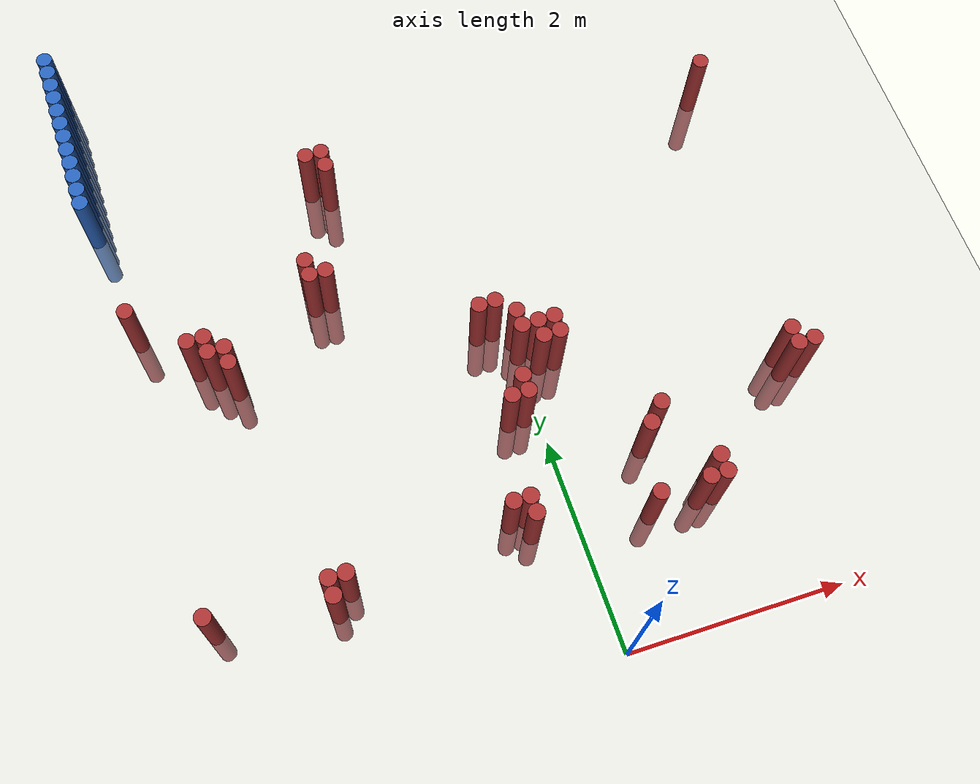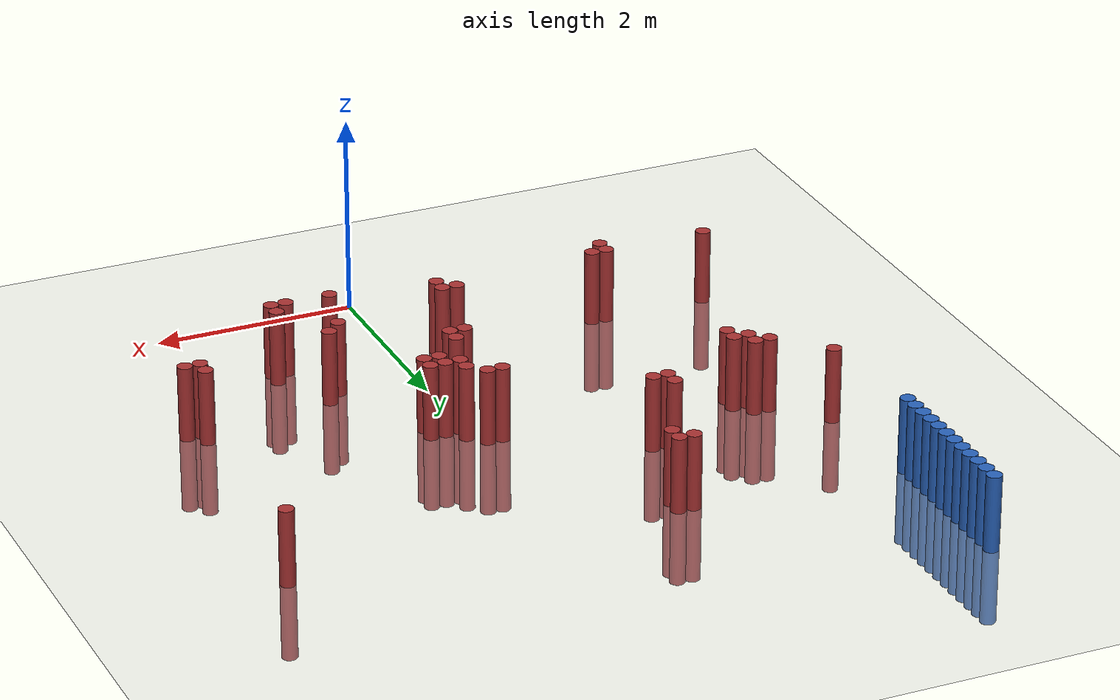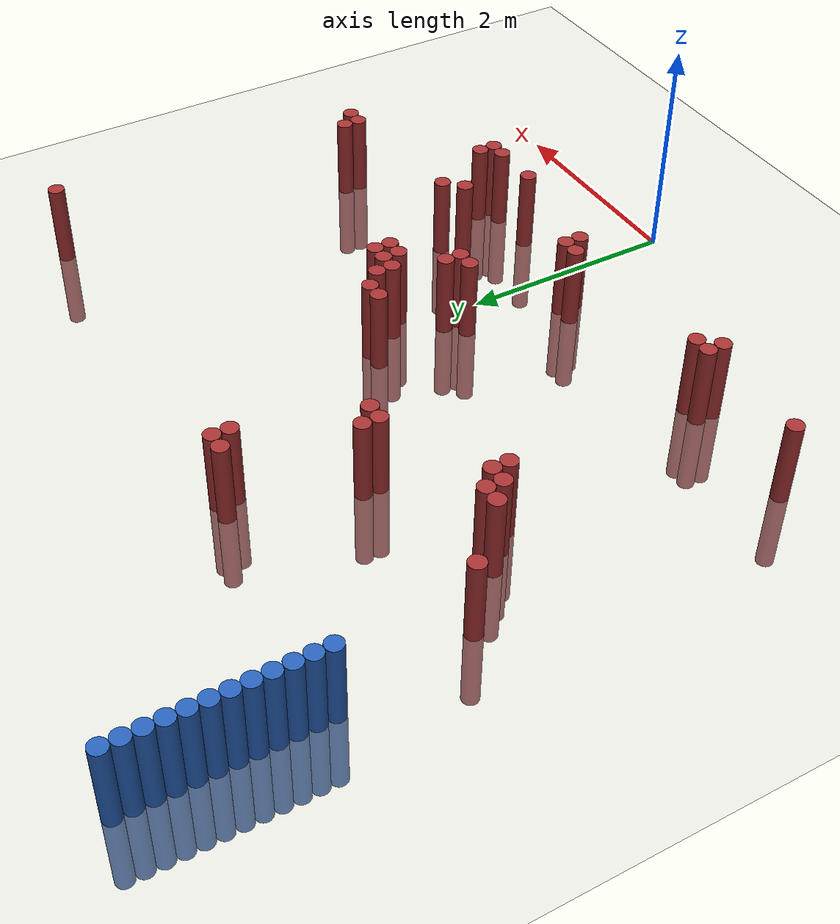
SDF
<sdf version="1.6">
 <world name="default">
  <model name="ground_plane">
   <static>1</static>
   <link name="link">
    <collision name="collision">
     <geometry><plane><normal>0 0 1</normal><size>100 100</size></plane></geometry>
     <surface><friction><ode><mu>100</mu><mu2>50</mu2></ode></friction></surface>
    </collision>
    <visual name="visual">
     <cast_shadows>0</cast_shadows>
     <geometry><plane><normal>0 0 1</normal><size>100 100</size></plane></geometry>
     <material>
      <script><uri>file://media/materials/scripts/gazebo.material</uri><name>Gazebo/Grey</name></script>
     </material>
    </visual>
   </link>
  </model>
  <model name="unit_cylinder_185">
   <static>1</static>
   <pose>-3.425000 5.275000 0.000000 0.000000 0.000000 0.000000</pose>
   <link name="link">
    <inertial>
     <mass>1</mass>
     <inertia><ixx>0.145833</ixx><ixy>0</ixy><ixz>0</ixz><iyy>0.145833</iyy><iyz>0</iyz><izz>0.125</izz></inertia>
    </inertial>
    <collision name="collision">
     <geometry><cylinder><radius>0.075000</radius><length>1.5</length></cylinder></geometry>
    </collision>
    <visual name="visual">
     <geometry><cylinder><radius>0.075000</radius><length>1.5</length></cylinder></geometry>
     <material>
      <ambient>0.152000 0.379000 0.720000 1</ambient>
      <diffuse>0.152000 0.379000 0.720000 1</diffuse>
     </material>
     <material>
      <script><name>Gazebo/Grey</name><uri>file://media/materials/scripts/gazebo.material</uri></script>
     </material>
    </visual>
   </link>
  </model>
  <model name="unit_cylinder_187">
   <static>1</static>
   <pose>-3.425000 5.425000 0.000000 0.000000 0.000000 0.000000</pose>
   <link name="link">
    <inertial>
     <mass>1</mass>
     <inertia><ixx>0.145833</ixx><ixy>0</ixy><ixz>0</ixz><iyy>0.145833</iyy><iyz>0</iyz><izz>0.125</izz></inertia>
    </inertial>
    <collision name="collision">
     <geometry><cylinder><radius>0.075000</radius><length>1.5</length></cylinder></geometry>
    </collision>
    <visual name="visual">
     <geometry><cylinder><radius>0.075000</radius><length>1.5</length></cylinder></geometry>
     <material>
      <ambient>0.152000 0.379000 0.720000 1</ambient>
      <diffuse>0.152000 0.379000 0.720000 1</diffuse>
     </material>
     <material>
      <script><name>Gazebo/Grey</name><uri>file://media/materials/scripts/gazebo.material</uri></script>
     </material>
    </visual>
   </link>
  </model>
  <model name="unit_cylinder_189">
   <static>1</static>
   <pose>-3.425000 5.575000 0.000000 0.000000 0.000000 0.000000</pose>
   <link name="link">
    <inertial>
     <mass>1</mass>
     <inertia><ixx>0.145833</ixx><ixy>0</ixy><ixz>0</ixz><iyy>0.145833</iyy><iyz>0</iyz><izz>0.125</izz></inertia>
    </inertial>
    <collision name="collision">
     <geometry><cylinder><radius>0.075000</radius><length>1.5</length></cylinder></geometry>
    </collision>
    <visual name="visual">
     <geometry><cylinder><radius>0.075000</radius><length>1.5</length></cylinder></geometry>
     <material>
      <ambient>0.152000 0.379000 0.720000 1</ambient>
      <diffuse>0.152000 0.379000 0.720000 1</diffuse>
     </material>
     <material>
      <script><name>Gazebo/Grey</name><uri>file://media/materials/scripts/gazebo.material</uri></script>
     </material>
    </visual>
   </link>
  </model>
  <model name="unit_cylinder_191">
   <static>1</static>
   <pose>-3.425000 5.725000 0.000000 0.000000 0.000000 0.000000</pose>
   <link name="link">
    <inertial>
     <mass>1</mass>
     <inertia><ixx>0.145833</ixx><ixy>0</ixy><ixz>0</ixz><iyy>0.145833</iyy><iyz>0</iyz><izz>0.125</izz></inertia>
    </inertial>
    <collision name="collision">
     <geometry><cylinder><radius>0.075000</radius><length>1.5</length></cylinder></geometry>
    </collision>
    <visual name="visual">
     <geometry><cylinder><radius>0.075000</radius><length>1.5</length></cylinder></geometry>
     <material>
      <ambient>0.152000 0.379000 0.720000 1</ambient>
      <diffuse>0.152000 0.379000 0.720000 1</diffuse>
     </material>
     <material>
      <script><name>Gazebo/Grey</name><uri>file://media/materials/scripts/gazebo.material</uri></script>
     </material>
    </visual>
   </link>
  </model>
  <model name="unit_cylinder_193">
   <static>1</static>
   <pose>-3.425000 5.875000 0.000000 0.000000 0.000000 0.000000</pose>
   <link name="link">
    <inertial>
     <mass>1</mass>
     <inertia><ixx>0.145833</ixx><ixy>0</ixy><ixz>0</ixz><iyy>0.145833</iyy><iyz>0</iyz><izz>0.125</izz></inertia>
    </inertial>
    <collision name="collision">
     <geometry><cylinder><radius>0.075000</radius><length>1.5</length></cylinder></geometry>
    </collision>
    <visual name="visual">
     <geometry><cylinder><radius>0.075000</radius><length>1.5</length></cylinder></geometry>
     <material>
      <ambient>0.152000 0.379000 0.720000 1</ambient>
      <diffuse>0.152000 0.379000 0.720000 1</diffuse>
     </material>
     <material>
      <script><name>Gazebo/Grey</name><uri>file://media/materials/scripts/gazebo.material</uri></script>
     </material>
    </visual>
   </link>
  </model>
  <model name="unit_cylinder_195">
   <static>1</static>
   <pose>-3.425000 6.025000 0.000000 0.000000 0.000000 0.000000</pose>
   <link name="link">
    <inertial>
     <mass>1</mass>
     <inertia><ixx>0.145833</ixx><ixy>0</ixy><ixz>0</ixz><iyy>0.145833</iyy><iyz>0</iyz><izz>0.125</izz></inertia>
    </inertial>
    <collision name="collision">
     <geometry><cylinder><radius>0.075000</radius><length>1.5</length></cylinder></geometry>
    </collision>
    <visual name="visual">
     <geometry><cylinder><radius>0.075000</radius><length>1.5</length></cylinder></geometry>
     <material>
      <ambient>0.152000 0.379000 0.720000 1</ambient>
      <diffuse>0.152000 0.379000 0.720000 1</diffuse>
     </material>
     <material>
      <script><name>Gazebo/Grey</name><uri>file://media/materials/scripts/gazebo.material</uri></script>
     </material>
    </visual>
   </link>
  </model>
  <model name="unit_cylinder_197">
   <static>1</static>
   <pose>-3.425000 6.175000 0.000000 0.000000 0.000000 0.000000</pose>
   <link name="link">
    <inertial>
     <mass>1</mass>
     <inertia><ixx>0.145833</ixx><ixy>0</ixy><ixz>0</ixz><iyy>0.145833</iyy><iyz>0</iyz><izz>0.125</izz></inertia>
    </inertial>
    <collision name="collision">
     <geometry><cylinder><radius>0.075000</radius><length>1.5</length></cylinder></geometry>
    </collision>
    <visual name="visual">
     <geometry><cylinder><radius>0.075000</radius><length>1.5</length></cylinder></geometry>
     <material>
      <ambient>0.152000 0.379000 0.720000 1</ambient>
      <diffuse>0.152000 0.379000 0.720000 1</diffuse>
     </material>
     <material>
      <script><name>Gazebo/Grey</name><uri>file://media/materials/scripts/gazebo.material</uri></script>
     </material>
    </visual>
   </link>
  </model>
  <model name="unit_cylinder_199">
   <static>1</static>
   <pose>-3.425000 6.325000 0.000000 0.000000 0.000000 0.000000</pose>
   <link name="link">
    <inertial>
     <mass>1</mass>
     <inertia><ixx>0.145833</ixx><ixy>0</ixy><ixz>0</ixz><iyy>0.145833</iyy><iyz>0</iyz><izz>0.125</izz></inertia>
    </inertial>
    <collision name="collision">
     <geometry><cylinder><radius>0.075000</radius><length>1.5</length></cylinder></geometry>
    </collision>
    <visual name="visual">
     <geometry><cylinder><radius>0.075000</radius><length>1.5</length></cylinder></geometry>
     <material>
      <ambient>0.152000 0.379000 0.720000 1</ambient>
      <diffuse>0.152000 0.379000 0.720000 1</diffuse>
     </material>
     <material>
      <script><name>Gazebo/Grey</name><uri>file://media/materials/scripts/gazebo.material</uri></script>
     </material>
    </visual>
   </link>
  </model>
  <model name="unit_cylinder_201">
   <static>1</static>
   <pose>-3.425000 6.475000 0.000000 0.000000 0.000000 0.000000</pose>
   <link name="link">
    <inertial>
     <mass>1</mass>
     <inertia><ixx>0.145833</ixx><ixy>0</ixy><ixz>0</ixz><iyy>0.145833</iyy><iyz>0</iyz><izz>0.125</izz></inertia>
    </inertial>
    <collision name="collision">
     <geometry><cylinder><radius>0.075000</radius><length>1.5</length></cylinder></geometry>
    </collision>
    <visual name="visual">
     <geometry><cylinder><radius>0.075000</radius><length>1.5</length></cylinder></geometry>
     <material>
      <ambient>0.152000 0.379000 0.720000 1</ambient>
      <diffuse>0.152000 0.379000 0.720000 1</diffuse>
     </material>
     <material>
      <script><name>Gazebo/Grey</name><uri>file://media/materials/scripts/gazebo.material</uri></script>
     </material>
    </visual>
   </link>
  </model>
  <model name="unit_cylinder_203">
   <static>1</static>
   <pose>-3.425000 6.625000 0.000000 0.000000 0.000000 0.000000</pose>
   <link name="link">
    <inertial>
     <mass>1</mass>
     <inertia><ixx>0.145833</ixx><ixy>0</ixy><ixz>0</ixz><iyy>0.145833</iyy><iyz>0</iyz><izz>0.125</izz></inertia>
    </inertial>
    <collision name="collision">
     <geometry><cylinder><radius>0.075000</radius><length>1.5</length></cylinder></geometry>
    </collision>
    <visual name="visual">
     <geometry><cylinder><radius>0.075000</radius><length>1.5</length></cylinder></geometry>
     <material>
      <ambient>0.152000 0.379000 0.720000 1</ambient>
      <diffuse>0.152000 0.379000 0.720000 1</diffuse>
     </material>
     <material>
      <script><name>Gazebo/Grey</name><uri>file://media/materials/scripts/gazebo.material</uri></script>
     </material>
    </visual>
   </link>
  </model>
  <model name="unit_cylinder_205">
   <static>1</static>
   <pose>-3.425000 6.775000 0.000000 0.000000 0.000000 0.000000</pose>
   <link name="link">
    <inertial>
     <mass>1</mass>
     <inertia><ixx>0.145833</ixx><ixy>0</ixy><ixz>0</ixz><iyy>0.145833</iyy><iyz>0</iyz><izz>0.125</izz></inertia>
    </inertial>
    <collision name="collision">
     <geometry><cylinder><radius>0.075000</radius><length>1.5</length></cylinder></geometry>
    </collision>
    <visual name="visual">
     <geometry><cylinder><radius>0.075000</radius><length>1.5</length></cylinder></geometry>
     <material>
      <ambient>0.152000 0.379000 0.720000 1</ambient>
      <diffuse>0.152000 0.379000 0.720000 1</diffuse>
     </material>
     <material>
      <script><name>Gazebo/Grey</name><uri>file://media/materials/scripts/gazebo.material</uri></script>
     </material>
    </visual>
   </link>
  </model>
  <model name="unit_cylinder_207">
   <static>1</static>
   <pose>-3.425000 6.925000 0.000000 0.000000 0.000000 0.000000</pose>
   <link name="link">
    <inertial>
     <mass>1</mass>
     <inertia><ixx>0.145833</ixx><ixy>0</ixy><ixz>0</ixz><iyy>0.145833</iyy><iyz>0</iyz><izz>0.125</izz></inertia>
    </inertial>
    <collision name="collision">
     <geometry><cylinder><radius>0.075000</radius><length>1.5</length></cylinder></geometry>
    </collision>
    <visual name="visual">
     <geometry><cylinder><radius>0.075000</radius><length>1.5</length></cylinder></geometry>
     <material>
      <ambient>0.152000 0.379000 0.720000 1</ambient>
      <diffuse>0.152000 0.379000 0.720000 1</diffuse>
     </material>
     <material>
      <script><name>Gazebo/Grey</name><uri>file://media/materials/scripts/gazebo.material</uri></script>
     </material>
    </visual>
   </link>
  </model>
  <model name="unit_cylinder_256">
   <static>1</static>
   <pose>-3.425000 5.275000 0.000000 0.000000 0.000000 0.000000</pose>
   <link name="link">
    <inertial>
     <mass>1</mass>
     <inertia><ixx>0.145833</ixx><ixy>0</ixy><ixz>0</ixz><iyy>0.145833</iyy><iyz>0</iyz><izz>0.125</izz></inertia>
    </inertial>
    <collision name="collision">
     <geometry><cylinder><radius>0.075000</radius><length>1.5</length></cylinder></geometry>
    </collision>
    <visual name="visual">
     <geometry><cylinder><radius>0.075000</radius><length>1.5</length></cylinder></geometry>
     <material>
      <ambient>0.152000 0.379000 0.720000 1</ambient>
      <diffuse>0.152000 0.379000 0.720000 1</diffuse>
     </material>
     <material>
      <script><name>Gazebo/Grey</name><uri>file://media/materials/scripts/gazebo.material</uri></script>
     </material>
    </visual>
   </link>
  </model>
  <model name="unit_cylinder_257">
   <static>1</static>
   <pose>-3.425000 5.425000 0.000000 0.000000 0.000000 0.000000</pose>
   <link name="link">
    <inertial>
     <mass>1</mass>
     <inertia><ixx>0.145833</ixx><ixy>0</ixy><ixz>0</ixz><iyy>0.145833</iyy><iyz>0</iyz><izz>0.125</izz></inertia>
    </inertial>
    <collision name="collision">
     <geometry><cylinder><radius>0.075000</radius><length>1.5</length></cylinder></geometry>
    </collision>
    <visual name="visual">
     <geometry><cylinder><radius>0.075000</radius><length>1.5</length></cylinder></geometry>
     <material>
      <ambient>0.152000 0.379000 0.720000 1</ambient>
      <diffuse>0.152000 0.379000 0.720000 1</diffuse>
     </material>
     <material>
      <script><name>Gazebo/Grey</name><uri>file://media/materials/scripts/gazebo.material</uri></script>
     </material>
    </visual>
   </link>
  </model>
  <model name="unit_cylinder_261">
   <static>1</static>
   <pose>-3.275000 1.225000 0.000000 0.000000 0.000000 0.000000</pose>
   <link name="link">
    <inertial>
     <mass>1</mass>
     <inertia><ixx>0.145833</ixx><ixy>0</ixy><ixz>0</ixz><iyy>0.145833</iyy><iyz>0</iyz><izz>0.125</izz></inertia>
    </inertial>
    <collision name="collision">
     <geometry><cylinder><radius>0.075000</radius><length>1.5</length></cylinder></geometry>
    </collision>
    <visual name="visual">
     <geometry><cylinder><radius>0.075000</radius><length>1.5</length></cylinder></geometry>
     <material>
      <ambient>0.648000 0.192000 0.192000 1</ambient>
      <diffuse>0.648000 0.192000 0.192000 1</diffuse>
     </material>
     <material>
      <script><name>Gazebo/Grey</name><uri>file://media/materials/scripts/gazebo.material</uri></script>
     </material>
    </visual>
   </link>
  </model>
  <model name="unit_cylinder_262">
   <static>1</static>
   <pose>-3.275000 4.075000 0.000000 0.000000 0.000000 0.000000</pose>
   <link name="link">
    <inertial>
     <mass>1</mass>
     <inertia><ixx>0.145833</ixx><ixy>0</ixy><ixz>0</ixz><iyy>0.145833</iyy><iyz>0</iyz><izz>0.125</izz></inertia>
    </inertial>
    <collision name="collision">
     <geometry><cylinder><radius>0.075000</radius><length>1.5</length></cylinder></geometry>
    </collision>
    <visual name="visual">
     <geometry><cylinder><radius>0.075000</radius><length>1.5</length></cylinder></geometry>
     <material>
      <ambient>0.648000 0.192000 0.192000 1</ambient>
      <diffuse>0.648000 0.192000 0.192000 1</diffuse>
     </material>
     <material>
      <script><name>Gazebo/Grey</name><uri>file://media/materials/scripts/gazebo.material</uri></script>
     </material>
    </visual>
   </link>
  </model>
  <model name="unit_cylinder_263">
   <static>1</static>
   <pose>-2.825000 3.625000 0.000000 0.000000 0.000000 0.000000</pose>
   <link name="link">
    <inertial>
     <mass>1</mass>
     <inertia><ixx>0.145833</ixx><ixy>0</ixy><ixz>0</ixz><iyy>0.145833</iyy><iyz>0</iyz><izz>0.125</izz></inertia>
    </inertial>
    <collision name="collision">
     <geometry><cylinder><radius>0.075000</radius><length>1.5</length></cylinder></geometry>
    </collision>
    <visual name="visual">
     <geometry><cylinder><radius>0.075000</radius><length>1.5</length></cylinder></geometry>
     <material>
      <ambient>0.648000 0.192000 0.192000 1</ambient>
      <diffuse>0.648000 0.192000 0.192000 1</diffuse>
     </material>
     <material>
      <script><name>Gazebo/Grey</name><uri>file://media/materials/scripts/gazebo.material</uri></script>
     </material>
    </visual>
   </link>
  </model>
  <model name="unit_cylinder_264">
   <static>1</static>
   <pose>-2.675000 3.475000 0.000000 0.000000 0.000000 0.000000</pose>
   <link name="link">
    <inertial>
     <mass>1</mass>
     <inertia><ixx>0.145833</ixx><ixy>0</ixy><ixz>0</ixz><iyy>0.145833</iyy><iyz>0</iyz><izz>0.125</izz></inertia>
    </inertial>
    <collision name="collision">
     <geometry><cylinder><radius>0.075000</radius><length>1.5</length></cylinder></geometry>
    </collision>
    <visual name="visual">
     <geometry><cylinder><radius>0.075000</radius><length>1.5</length></cylinder></geometry>
     <material>
      <ambient>0.648000 0.192000 0.192000 1</ambient>
      <diffuse>0.648000 0.192000 0.192000 1</diffuse>
     </material>
     <material>
      <script><name>Gazebo/Grey</name><uri>file://media/materials/scripts/gazebo.material</uri></script>
     </material>
    </visual>
   </link>
  </model>
  <model name="unit_cylinder_265">
   <static>1</static>
   <pose>-2.675000 3.625000 0.000000 0.000000 0.000000 0.000000</pose>
   <link name="link">
    <inertial>
     <mass>1</mass>
     <inertia><ixx>0.145833</ixx><ixy>0</ixy><ixz>0</ixz><iyy>0.145833</iyy><iyz>0</iyz><izz>0.125</izz></inertia>
    </inertial>
    <collision name="collision">
     <geometry><cylinder><radius>0.075000</radius><length>1.5</length></cylinder></geometry>
    </collision>
    <visual name="visual">
     <geometry><cylinder><radius>0.075000</radius><length>1.5</length></cylinder></geometry>
     <material>
      <ambient>0.648000 0.192000 0.192000 1</ambient>
      <diffuse>0.648000 0.192000 0.192000 1</diffuse>
     </material>
     <material>
      <script><name>Gazebo/Grey</name><uri>file://media/materials/scripts/gazebo.material</uri></script>
     </material>
    </visual>
   </link>
  </model>
  <model name="unit_cylinder_266">
   <static>1</static>
   <pose>-2.525000 3.325000 0.000000 0.000000 0.000000 0.000000</pose>
   <link name="link">
    <inertial>
     <mass>1</mass>
     <inertia><ixx>0.145833</ixx><ixy>0</ixy><ixz>0</ixz><iyy>0.145833</iyy><iyz>0</iyz><izz>0.125</izz></inertia>
    </inertial>
    <collision name="collision">
     <geometry><cylinder><radius>0.075000</radius><length>1.5</length></cylinder></geometry>
    </collision>
    <visual name="visual">
     <geometry><cylinder><radius>0.075000</radius><length>1.5</length></cylinder></geometry>
     <material>
      <ambient>0.648000 0.192000 0.192000 1</ambient>
      <diffuse>0.648000 0.192000 0.192000 1</diffuse>
     </material>
     <material>
      <script><name>Gazebo/Grey</name><uri>file://media/materials/scripts/gazebo.material</uri></script>
     </material>
    </visual>
   </link>
  </model>
  <model name="unit_cylinder_267">
   <static>1</static>
   <pose>-2.525000 3.475000 0.000000 0.000000 0.000000 0.000000</pose>
   <link name="link">
    <inertial>
     <mass>1</mass>
     <inertia><ixx>0.145833</ixx><ixy>0</ixy><ixz>0</ixz><iyy>0.145833</iyy><iyz>0</iyz><izz>0.125</izz></inertia>
    </inertial>
    <collision name="collision">
     <geometry><cylinder><radius>0.075000</radius><length>1.5</length></cylinder></geometry>
    </collision>
    <visual name="visual">
     <geometry><cylinder><radius>0.075000</radius><length>1.5</length></cylinder></geometry>
     <material>
      <ambient>0.648000 0.192000 0.192000 1</ambient>
      <diffuse>0.648000 0.192000 0.192000 1</diffuse>
     </material>
     <material>
      <script><name>Gazebo/Grey</name><uri>file://media/materials/scripts/gazebo.material</uri></script>
     </material>
    </visual>
   </link>
  </model>
  <model name="unit_cylinder_271">
   <static>1</static>
   <pose>-2.225000 1.075000 0.000000 0.000000 0.000000 0.000000</pose>
   <link name="link">
    <inertial>
     <mass>1</mass>
     <inertia><ixx>0.145833</ixx><ixy>0</ixy><ixz>0</ixz><iyy>0.145833</iyy><iyz>0</iyz><izz>0.125</izz></inertia>
    </inertial>
    <collision name="collision">
     <geometry><cylinder><radius>0.075000</radius><length>1.5</length></cylinder></geometry>
    </collision>
    <visual name="visual">
     <geometry><cylinder><radius>0.075000</radius><length>1.5</length></cylinder></geometry>
     <material>
      <ambient>0.648000 0.192000 0.192000 1</ambient>
      <diffuse>0.648000 0.192000 0.192000 1</diffuse>
     </material>
     <material>
      <script><name>Gazebo/Grey</name><uri>file://media/materials/scripts/gazebo.material</uri></script>
     </material>
    </visual>
   </link>
  </model>
  <model name="unit_cylinder_272">
   <static>1</static>
   <pose>-2.225000 1.225000 0.000000 0.000000 0.000000 0.000000</pose>
   <link name="link">
    <inertial>
     <mass>1</mass>
     <inertia><ixx>0.145833</ixx><ixy>0</ixy><ixz>0</ixz><iyy>0.145833</iyy><iyz>0</iyz><izz>0.125</izz></inertia>
    </inertial>
    <collision name="collision">
     <geometry><cylinder><radius>0.075000</radius><length>1.5</length></cylinder></geometry>
    </collision>
    <visual name="visual">
     <geometry><cylinder><radius>0.075000</radius><length>1.5</length></cylinder></geometry>
     <material>
      <ambient>0.648000 0.192000 0.192000 1</ambient>
      <diffuse>0.648000 0.192000 0.192000 1</diffuse>
     </material>
     <material>
      <script><name>Gazebo/Grey</name><uri>file://media/materials/scripts/gazebo.material</uri></script>
     </material>
    </visual>
   </link>
  </model>
  <model name="unit_cylinder_274">
   <static>1</static>
   <pose>-2.075000 1.225000 0.000000 0.000000 0.000000 0.000000</pose>
   <link name="link">
    <inertial>
     <mass>1</mass>
     <inertia><ixx>0.145833</ixx><ixy>0</ixy><ixz>0</ixz><iyy>0.145833</iyy><iyz>0</iyz><izz>0.125</izz></inertia>
    </inertial>
    <collision name="collision">
     <geometry><cylinder><radius>0.075000</radius><length>1.5</length></cylinder></geometry>
    </collision>
    <visual name="visual">
     <geometry><cylinder><radius>0.075000</radius><length>1.5</length></cylinder></geometry>
     <material>
      <ambient>0.648000 0.192000 0.192000 1</ambient>
      <diffuse>0.648000 0.192000 0.192000 1</diffuse>
     </material>
     <material>
      <script><name>Gazebo/Grey</name><uri>file://media/materials/scripts/gazebo.material</uri></script>
     </material>
    </visual>
   </link>
  </model>
  <model name="unit_cylinder_275">
   <static>1</static>
   <pose>-1.625000 3.925000 0.000000 0.000000 0.000000 0.000000</pose>
   <link name="link">
    <inertial>
     <mass>1</mass>
     <inertia><ixx>0.145833</ixx><ixy>0</ixy><ixz>0</ixz><iyy>0.145833</iyy><iyz>0</iyz><izz>0.125</izz></inertia>
    </inertial>
    <collision name="collision">
     <geometry><cylinder><radius>0.075000</radius><length>1.5</length></cylinder></geometry>
    </collision>
    <visual name="visual">
     <geometry><cylinder><radius>0.075000</radius><length>1.5</length></cylinder></geometry>
     <material>
      <ambient>0.648000 0.192000 0.192000 1</ambient>
      <diffuse>0.648000 0.192000 0.192000 1</diffuse>
     </material>
     <material>
      <script><name>Gazebo/Grey</name><uri>file://media/materials/scripts/gazebo.material</uri></script>
     </material>
    </visual>
   </link>
  </model>
  <model name="unit_cylinder_276">
   <static>1</static>
   <pose>-1.625000 4.075000 0.000000 0.000000 0.000000 0.000000</pose>
   <link name="link">
    <inertial>
     <mass>1</mass>
     <inertia><ixx>0.145833</ixx><ixy>0</ixy><ixz>0</ixz><iyy>0.145833</iyy><iyz>0</iyz><izz>0.125</izz></inertia>
    </inertial>
    <collision name="collision">
     <geometry><cylinder><radius>0.075000</radius><length>1.5</length></cylinder></geometry>
    </collision>
    <visual name="visual">
     <geometry><cylinder><radius>0.075000</radius><length>1.5</length></cylinder></geometry>
     <material>
      <ambient>0.648000 0.192000 0.192000 1</ambient>
      <diffuse>0.648000 0.192000 0.192000 1</diffuse>
     </material>
     <material>
      <script><name>Gazebo/Grey</name><uri>file://media/materials/scripts/gazebo.material</uri></script>
     </material>
    </visual>
   </link>
  </model>
  <model name="unit_cylinder_277">
   <static>1</static>
   <pose>-1.475000 3.925000 0.000000 0.000000 0.000000 0.000000</pose>
   <link name="link">
    <inertial>
     <mass>1</mass>
     <inertia><ixx>0.145833</ixx><ixy>0</ixy><ixz>0</ixz><iyy>0.145833</iyy><iyz>0</iyz><izz>0.125</izz></inertia>
    </inertial>
    <collision name="collision">
     <geometry><cylinder><radius>0.075000</radius><length>1.5</length></cylinder></geometry>
    </collision>
    <visual name="visual">
     <geometry><cylinder><radius>0.075000</radius><length>1.5</length></cylinder></geometry>
     <material>
      <ambient>0.648000 0.192000 0.192000 1</ambient>
      <diffuse>0.648000 0.192000 0.192000 1</diffuse>
     </material>
     <material>
      <script><name>Gazebo/Grey</name><uri>file://media/materials/scripts/gazebo.material</uri></script>
     </material>
    </visual>
   </link>
  </model>
  <model name="unit_cylinder_278">
   <static>1</static>
   <pose>-1.325000 5.125000 0.000000 0.000000 0.000000 0.000000</pose>
   <link name="link">
    <inertial>
     <mass>1</mass>
     <inertia><ixx>0.145833</ixx><ixy>0</ixy><ixz>0</ixz><iyy>0.145833</iyy><iyz>0</iyz><izz>0.125</izz></inertia>
    </inertial>
    <collision name="collision">
     <geometry><cylinder><radius>0.075000</radius><length>1.5</length></cylinder></geometry>
    </collision>
    <visual name="visual">
     <geometry><cylinder><radius>0.075000</radius><length>1.5</length></cylinder></geometry>
     <material>
      <ambient>0.648000 0.192000 0.192000 1</ambient>
      <diffuse>0.648000 0.192000 0.192000 1</diffuse>
     </material>
     <material>
      <script><name>Gazebo/Grey</name><uri>file://media/materials/scripts/gazebo.material</uri></script>
     </material>
    </visual>
   </link>
  </model>
  <model name="unit_cylinder_279">
   <static>1</static>
   <pose>-1.175000 4.975000 0.000000 0.000000 0.000000 0.000000</pose>
   <link name="link">
    <inertial>
     <mass>1</mass>
     <inertia><ixx>0.145833</ixx><ixy>0</ixy><ixz>0</ixz><iyy>0.145833</iyy><iyz>0</iyz><izz>0.125</izz></inertia>
    </inertial>
    <collision name="collision">
     <geometry><cylinder><radius>0.075000</radius><length>1.5</length></cylinder></geometry>
    </collision>
    <visual name="visual">
     <geometry><cylinder><radius>0.075000</radius><length>1.5</length></cylinder></geometry>
     <material>
      <ambient>0.648000 0.192000 0.192000 1</ambient>
      <diffuse>0.648000 0.192000 0.192000 1</diffuse>
     </material>
     <material>
      <script><name>Gazebo/Grey</name><uri>file://media/materials/scripts/gazebo.material</uri></script>
     </material>
    </visual>
   </link>
  </model>
  <model name="unit_cylinder_280">
   <static>1</static>
   <pose>-1.175000 5.125000 0.000000 0.000000 0.000000 0.000000</pose>
   <link name="link">
    <inertial>
     <mass>1</mass>
     <inertia><ixx>0.145833</ixx><ixy>0</ixy><ixz>0</ixz><iyy>0.145833</iyy><iyz>0</iyz><izz>0.125</izz></inertia>
    </inertial>
    <collision name="collision">
     <geometry><cylinder><radius>0.075000</radius><length>1.5</length></cylinder></geometry>
    </collision>
    <visual name="visual">
     <geometry><cylinder><radius>0.075000</radius><length>1.5</length></cylinder></geometry>
     <material>
      <ambient>0.648000 0.192000 0.192000 1</ambient>
      <diffuse>0.648000 0.192000 0.192000 1</diffuse>
     </material>
     <material>
      <script><name>Gazebo/Grey</name><uri>file://media/materials/scripts/gazebo.material</uri></script>
     </material>
    </visual>
   </link>
  </model>
  <model name="unit_cylinder_281">
   <static>1</static>
   <pose>-0.575000 1.375000 0.000000 0.000000 0.000000 0.000000</pose>
   <link name="link">
    <inertial>
     <mass>1</mass>
     <inertia><ixx>0.145833</ixx><ixy>0</ixy><ixz>0</ixz><iyy>0.145833</iyy><iyz>0</iyz><izz>0.125</izz></inertia>
    </inertial>
    <collision name="collision">
     <geometry><cylinder><radius>0.075000</radius><length>1.5</length></cylinder></geometry>
    </collision>
    <visual name="visual">
     <geometry><cylinder><radius>0.075000</radius><length>1.5</length></cylinder></geometry>
     <material>
      <ambient>0.648000 0.192000 0.192000 1</ambient>
      <diffuse>0.648000 0.192000 0.192000 1</diffuse>
     </material>
     <material>
      <script><name>Gazebo/Grey</name><uri>file://media/materials/scripts/gazebo.material</uri></script>
     </material>
    </visual>
   </link>
  </model>
  <model name="unit_cylinder_282">
   <static>1</static>
   <pose>-0.425000 1.225000 0.000000 0.000000 0.000000 0.000000</pose>
   <link name="link">
    <inertial>
     <mass>1</mass>
     <inertia><ixx>0.145833</ixx><ixy>0</ixy><ixz>0</ixz><iyy>0.145833</iyy><iyz>0</iyz><izz>0.125</izz></inertia>
    </inertial>
    <collision name="collision">
     <geometry><cylinder><radius>0.075000</radius><length>1.5</length></cylinder></geometry>
    </collision>
    <visual name="visual">
     <geometry><cylinder><radius>0.075000</radius><length>1.5</length></cylinder></geometry>
     <material>
      <ambient>0.648000 0.192000 0.192000 1</ambient>
      <diffuse>0.648000 0.192000 0.192000 1</diffuse>
     </material>
     <material>
      <script><name>Gazebo/Grey</name><uri>file://media/materials/scripts/gazebo.material</uri></script>
     </material>
    </visual>
   </link>
  </model>
  <model name="unit_cylinder_283">
   <static>1</static>
   <pose>-0.425000 1.375000 0.000000 0.000000 0.000000 0.000000</pose>
   <link name="link">
    <inertial>
     <mass>1</mass>
     <inertia><ixx>0.145833</ixx><ixy>0</ixy><ixz>0</ixz><iyy>0.145833</iyy><iyz>0</iyz><izz>0.125</izz></inertia>
    </inertial>
    <collision name="collision">
     <geometry><cylinder><radius>0.075000</radius><length>1.5</length></cylinder></geometry>
    </collision>
    <visual name="visual">
     <geometry><cylinder><radius>0.075000</radius><length>1.5</length></cylinder></geometry>
     <material>
      <ambient>0.648000 0.192000 0.192000 1</ambient>
      <diffuse>0.648000 0.192000 0.192000 1</diffuse>
     </material>
     <material>
      <script><name>Gazebo/Grey</name><uri>file://media/materials/scripts/gazebo.material</uri></script>
     </material>
    </visual>
   </link>
  </model>
  <model name="unit_cylinder_284">
   <static>1</static>
   <pose>-0.275000 2.275000 0.000000 0.000000 0.000000 0.000000</pose>
   <link name="link">
    <inertial>
     <mass>1</mass>
     <inertia><ixx>0.145833</ixx><ixy>0</ixy><ixz>0</ixz><iyy>0.145833</iyy><iyz>0</iyz><izz>0.125</izz></inertia>
    </inertial>
    <collision name="collision">
     <geometry><cylinder><radius>0.075000</radius><length>1.5</length></cylinder></geometry>
    </collision>
    <visual name="visual">
     <geometry><cylinder><radius>0.075000</radius><length>1.5</length></cylinder></geometry>
     <material>
      <ambient>0.648000 0.192000 0.192000 1</ambient>
      <diffuse>0.648000 0.192000 0.192000 1</diffuse>
     </material>
     <material>
      <script><name>Gazebo/Grey</name><uri>file://media/materials/scripts/gazebo.material</uri></script>
     </material>
    </visual>
   </link>
  </model>
  <model name="unit_cylinder_285">
   <static>1</static>
   <pose>-0.275000 3.175000 0.000000 0.000000 0.000000 0.000000</pose>
   <link name="link">
    <inertial>
     <mass>1</mass>
     <inertia><ixx>0.145833</ixx><ixy>0</ixy><ixz>0</ixz><iyy>0.145833</iyy><iyz>0</iyz><izz>0.125</izz></inertia>
    </inertial>
    <collision name="collision">
     <geometry><cylinder><radius>0.075000</radius><length>1.5</length></cylinder></geometry>
    </collision>
    <visual name="visual">
     <geometry><cylinder><radius>0.075000</radius><length>1.5</length></cylinder></geometry>
     <material>
      <ambient>0.648000 0.192000 0.192000 1</ambient>
      <diffuse>0.648000 0.192000 0.192000 1</diffuse>
     </material>
     <material>
      <script><name>Gazebo/Grey</name><uri>file://media/materials/scripts/gazebo.material</uri></script>
     </material>
    </visual>
   </link>
  </model>
  <model name="unit_cylinder_286">
   <static>1</static>
   <pose>-0.125000 2.275000 0.000000 0.000000 0.000000 0.000000</pose>
   <link name="link">
    <inertial>
     <mass>1</mass>
     <inertia><ixx>0.145833</ixx><ixy>0</ixy><ixz>0</ixz><iyy>0.145833</iyy><iyz>0</iyz><izz>0.125</izz></inertia>
    </inertial>
    <collision name="collision">
     <geometry><cylinder><radius>0.075000</radius><length>1.5</length></cylinder></geometry>
    </collision>
    <visual name="visual">
     <geometry><cylinder><radius>0.075000</radius><length>1.5</length></cylinder></geometry>
     <material>
      <ambient>0.648000 0.192000 0.192000 1</ambient>
      <diffuse>0.648000 0.192000 0.192000 1</diffuse>
     </material>
     <material>
      <script><name>Gazebo/Grey</name><uri>file://media/materials/scripts/gazebo.material</uri></script>
     </material>
    </visual>
   </link>
  </model>
  <model name="unit_cylinder_287">
   <static>1</static>
   <pose>-0.125000 2.425000 0.000000 0.000000 0.000000 0.000000</pose>
   <link name="link">
    <inertial>
     <mass>1</mass>
     <inertia><ixx>0.145833</ixx><ixy>0</ixy><ixz>0</ixz><iyy>0.145833</iyy><iyz>0</iyz><izz>0.125</izz></inertia>
    </inertial>
    <collision name="collision">
     <geometry><cylinder><radius>0.075000</radius><length>1.5</length></cylinder></geometry>
    </collision>
    <visual name="visual">
     <geometry><cylinder><radius>0.075000</radius><length>1.5</length></cylinder></geometry>
     <material>
      <ambient>0.648000 0.192000 0.192000 1</ambient>
      <diffuse>0.648000 0.192000 0.192000 1</diffuse>
     </material>
     <material>
      <script><name>Gazebo/Grey</name><uri>file://media/materials/scripts/gazebo.material</uri></script>
     </material>
    </visual>
   </link>
  </model>
  <model name="unit_cylinder_288">
   <static>1</static>
   <pose>-0.125000 3.175000 0.000000 0.000000 0.000000 0.000000</pose>
   <link name="link">
    <inertial>
     <mass>1</mass>
     <inertia><ixx>0.145833</ixx><ixy>0</ixy><ixz>0</ixz><iyy>0.145833</iyy><iyz>0</iyz><izz>0.125</izz></inertia>
    </inertial>
    <collision name="collision">
     <geometry><cylinder><radius>0.075000</radius><length>1.5</length></cylinder></geometry>
    </collision>
    <visual name="visual">
     <geometry><cylinder><radius>0.075000</radius><length>1.5</length></cylinder></geometry>
     <material>
      <ambient>0.648000 0.192000 0.192000 1</ambient>
      <diffuse>0.648000 0.192000 0.192000 1</diffuse>
     </material>
     <material>
      <script><name>Gazebo/Grey</name><uri>file://media/materials/scripts/gazebo.material</uri></script>
     </material>
    </visual>
   </link>
  </model>
  <model name="unit_cylinder_289">
   <static>1</static>
   <pose>0.025000 2.875000 0.000000 0.000000 0.000000 0.000000</pose>
   <link name="link">
    <inertial>
     <mass>1</mass>
     <inertia><ixx>0.145833</ixx><ixy>0</ixy><ixz>0</ixz><iyy>0.145833</iyy><iyz>0</iyz><izz>0.125</izz></inertia>
    </inertial>
    <collision name="collision">
     <geometry><cylinder><radius>0.075000</radius><length>1.5</length></cylinder></geometry>
    </collision>
    <visual name="visual">
     <geometry><cylinder><radius>0.075000</radius><length>1.5</length></cylinder></geometry>
     <material>
      <ambient>0.648000 0.192000 0.192000 1</ambient>
      <diffuse>0.648000 0.192000 0.192000 1</diffuse>
     </material>
     <material>
      <script><name>Gazebo/Grey</name><uri>file://media/materials/scripts/gazebo.material</uri></script>
     </material>
    </visual>
   </link>
  </model>
  <model name="unit_cylinder_290">
   <static>1</static>
   <pose>0.025000 3.025000 0.000000 0.000000 0.000000 0.000000</pose>
   <link name="link">
    <inertial>
     <mass>1</mass>
     <inertia><ixx>0.145833</ixx><ixy>0</ixy><ixz>0</ixz><iyy>0.145833</iyy><iyz>0</iyz><izz>0.125</izz></inertia>
    </inertial>
    <collision name="collision">
     <geometry><cylinder><radius>0.075000</radius><length>1.5</length></cylinder></geometry>
    </collision>
    <visual name="visual">
     <geometry><cylinder><radius>0.075000</radius><length>1.5</length></cylinder></geometry>
     <material>
      <ambient>0.648000 0.192000 0.192000 1</ambient>
      <diffuse>0.648000 0.192000 0.192000 1</diffuse>
     </material>
     <material>
      <script><name>Gazebo/Grey</name><uri>file://media/materials/scripts/gazebo.material</uri></script>
     </material>
    </visual>
   </link>
  </model>
  <model name="unit_cylinder_291">
   <static>1</static>
   <pose>0.175000 2.725000 0.000000 0.000000 0.000000 0.000000</pose>
   <link name="link">
    <inertial>
     <mass>1</mass>
     <inertia><ixx>0.145833</ixx><ixy>0</ixy><ixz>0</ixz><iyy>0.145833</iyy><iyz>0</iyz><izz>0.125</izz></inertia>
    </inertial>
    <collision name="collision">
     <geometry><cylinder><radius>0.075000</radius><length>1.5</length></cylinder></geometry>
    </collision>
    <visual name="visual">
     <geometry><cylinder><radius>0.075000</radius><length>1.5</length></cylinder></geometry>
     <material>
      <ambient>0.648000 0.192000 0.192000 1</ambient>
      <diffuse>0.648000 0.192000 0.192000 1</diffuse>
     </material>
     <material>
      <script><name>Gazebo/Grey</name><uri>file://media/materials/scripts/gazebo.material</uri></script>
     </material>
    </visual>
   </link>
  </model>
  <model name="unit_cylinder_292">
   <static>1</static>
   <pose>0.175000 2.875000 0.000000 0.000000 0.000000 0.000000</pose>
   <link name="link">
    <inertial>
     <mass>1</mass>
     <inertia><ixx>0.145833</ixx><ixy>0</ixy><ixz>0</ixz><iyy>0.145833</iyy><iyz>0</iyz><izz>0.125</izz></inertia>
    </inertial>
    <collision name="collision">
     <geometry><cylinder><radius>0.075000</radius><length>1.5</length></cylinder></geometry>
    </collision>
    <visual name="visual">
     <geometry><cylinder><radius>0.075000</radius><length>1.5</length></cylinder></geometry>
     <material>
      <ambient>0.648000 0.192000 0.192000 1</ambient>
      <diffuse>0.648000 0.192000 0.192000 1</diffuse>
     </material>
     <material>
      <script><name>Gazebo/Grey</name><uri>file://media/materials/scripts/gazebo.material</uri></script>
     </material>
    </visual>
   </link>
  </model>
  <model name="unit_cylinder_293">
   <static>1</static>
   <pose>0.325000 2.725000 0.000000 0.000000 0.000000 0.000000</pose>
   <link name="link">
    <inertial>
     <mass>1</mass>
     <inertia><ixx>0.145833</ixx><ixy>0</ixy><ixz>0</ixz><iyy>0.145833</iyy><iyz>0</iyz><izz>0.125</izz></inertia>
    </inertial>
    <collision name="collision">
     <geometry><cylinder><radius>0.075000</radius><length>1.5</length></cylinder></geometry>
    </collision>
    <visual name="visual">
     <geometry><cylinder><radius>0.075000</radius><length>1.5</length></cylinder></geometry>
     <material>
      <ambient>0.648000 0.192000 0.192000 1</ambient>
      <diffuse>0.648000 0.192000 0.192000 1</diffuse>
     </material>
     <material>
      <script><name>Gazebo/Grey</name><uri>file://media/materials/scripts/gazebo.material</uri></script>
     </material>
    </visual>
   </link>
  </model>
  <model name="unit_cylinder_294">
   <static>1</static>
   <pose>0.325000 2.875000 0.000000 0.000000 0.000000 0.000000</pose>
   <link name="link">
    <inertial>
     <mass>1</mass>
     <inertia><ixx>0.145833</ixx><ixy>0</ixy><ixz>0</ixz><iyy>0.145833</iyy><iyz>0</iyz><izz>0.125</izz></inertia>
    </inertial>
    <collision name="collision">
     <geometry><cylinder><radius>0.075000</radius><length>1.5</length></cylinder></geometry>
    </collision>
    <visual name="visual">
     <geometry><cylinder><radius>0.075000</radius><length>1.5</length></cylinder></geometry>
     <material>
      <ambient>0.648000 0.192000 0.192000 1</ambient>
      <diffuse>0.648000 0.192000 0.192000 1</diffuse>
     </material>
     <material>
      <script><name>Gazebo/Grey</name><uri>file://media/materials/scripts/gazebo.material</uri></script>
     </material>
    </visual>
   </link>
  </model>
  <model name="unit_cylinder_299">
   <static>1</static>
   <pose>0.625000 1.075000 0.000000 0.000000 0.000000 0.000000</pose>
   <link name="link">
    <inertial>
     <mass>1</mass>
     <inertia><ixx>0.145833</ixx><ixy>0</ixy><ixz>0</ixz><iyy>0.145833</iyy><iyz>0</iyz><izz>0.125</izz></inertia>
    </inertial>
    <collision name="collision">
     <geometry><cylinder><radius>0.075000</radius><length>1.5</length></cylinder></geometry>
    </collision>
    <visual name="visual">
     <geometry><cylinder><radius>0.075000</radius><length>1.5</length></cylinder></geometry>
     <material>
      <ambient>0.648000 0.192000 0.192000 1</ambient>
      <diffuse>0.648000 0.192000 0.192000 1</diffuse>
     </material>
     <material>
      <script><name>Gazebo/Grey</name><uri>file://media/materials/scripts/gazebo.material</uri></script>
     </material>
    </visual>
   </link>
  </model>
  <model name="unit_cylinder_304">
   <static>1</static>
   <pose>0.775000 1.675000 0.000000 0.000000 0.000000 0.000000</pose>
   <link name="link">
    <inertial>
     <mass>1</mass>
     <inertia><ixx>0.145833</ixx><ixy>0</ixy><ixz>0</ixz><iyy>0.145833</iyy><iyz>0</iyz><izz>0.125</izz></inertia>
    </inertial>
    <collision name="collision">
     <geometry><cylinder><radius>0.075000</radius><length>1.5</length></cylinder></geometry>
    </collision>
    <visual name="visual">
     <geometry><cylinder><radius>0.075000</radius><length>1.5</length></cylinder></geometry>
     <material>
      <ambient>0.648000 0.192000 0.192000 1</ambient>
      <diffuse>0.648000 0.192000 0.192000 1</diffuse>
     </material>
     <material>
      <script><name>Gazebo/Grey</name><uri>file://media/materials/scripts/gazebo.material</uri></script>
     </material>
    </visual>
   </link>
  </model>
  <model name="unit_cylinder_311">
   <static>1</static>
   <pose>0.925000 1.825000 0.000000 0.000000 0.000000 0.000000</pose>
   <link name="link">
    <inertial>
     <mass>1</mass>
     <inertia><ixx>0.145833</ixx><ixy>0</ixy><ixz>0</ixz><iyy>0.145833</iyy><iyz>0</iyz><izz>0.125</izz></inertia>
    </inertial>
    <collision name="collision">
     <geometry><cylinder><radius>0.075000</radius><length>1.5</length></cylinder></geometry>
    </collision>
    <visual name="visual">
     <geometry><cylinder><radius>0.075000</radius><length>1.5</length></cylinder></geometry>
     <material>
      <ambient>0.648000 0.192000 0.192000 1</ambient>
      <diffuse>0.648000 0.192000 0.192000 1</diffuse>
     </material>
     <material>
      <script><name>Gazebo/Grey</name><uri>file://media/materials/scripts/gazebo.material</uri></script>
     </material>
    </visual>
   </link>
  </model>
  <model name="unit_cylinder_314">
   <static>1</static>
   <pose>1.075000 1.075000 0.000000 0.000000 0.000000 0.000000</pose>
   <link name="link">
    <inertial>
     <mass>1</mass>
     <inertia><ixx>0.145833</ixx><ixy>0</ixy><ixz>0</ixz><iyy>0.145833</iyy><iyz>0</iyz><izz>0.125</izz></inertia>
    </inertial>
    <collision name="collision">
     <geometry><cylinder><radius>0.075000</radius><length>1.5</length></cylinder></geometry>
    </collision>
    <visual name="visual">
     <geometry><cylinder><radius>0.075000</radius><length>1.5</length></cylinder></geometry>
     <material>
      <ambient>0.648000 0.192000 0.192000 1</ambient>
      <diffuse>0.648000 0.192000 0.192000 1</diffuse>
     </material>
     <material>
      <script><name>Gazebo/Grey</name><uri>file://media/materials/scripts/gazebo.material</uri></script>
     </material>
    </visual>
   </link>
  </model>
  <model name="unit_cylinder_315">
   <static>1</static>
   <pose>1.225000 1.075000 0.000000 0.000000 0.000000 0.000000</pose>
   <link name="link">
    <inertial>
     <mass>1</mass>
     <inertia><ixx>0.145833</ixx><ixy>0</ixy><ixz>0</ixz><iyy>0.145833</iyy><iyz>0</iyz><izz>0.125</izz></inertia>
    </inertial>
    <collision name="collision">
     <geometry><cylinder><radius>0.075000</radius><length>1.5</length></cylinder></geometry>
    </collision>
    <visual name="visual">
     <geometry><cylinder><radius>0.075000</radius><length>1.5</length></cylinder></geometry>
     <material>
      <ambient>0.648000 0.192000 0.192000 1</ambient>
      <diffuse>0.648000 0.192000 0.192000 1</diffuse>
     </material>
     <material>
      <script><name>Gazebo/Grey</name><uri>file://media/materials/scripts/gazebo.material</uri></script>
     </material>
    </visual>
   </link>
  </model>
  <model name="unit_cylinder_316">
   <static>1</static>
   <pose>1.225000 1.225000 0.000000 0.000000 0.000000 0.000000</pose>
   <link name="link">
    <inertial>
     <mass>1</mass>
     <inertia><ixx>0.145833</ixx><ixy>0</ixy><ixz>0</ixz><iyy>0.145833</iyy><iyz>0</iyz><izz>0.125</izz></inertia>
    </inertial>
    <collision name="collision">
     <geometry><cylinder><radius>0.075000</radius><length>1.5</length></cylinder></geometry>
    </collision>
    <visual name="visual">
     <geometry><cylinder><radius>0.075000</radius><length>1.5</length></cylinder></geometry>
     <material>
      <ambient>0.648000 0.192000 0.192000 1</ambient>
      <diffuse>0.648000 0.192000 0.192000 1</diffuse>
     </material>
     <material>
      <script><name>Gazebo/Grey</name><uri>file://media/materials/scripts/gazebo.material</uri></script>
     </material>
    </visual>
   </link>
  </model>
  <model name="unit_cylinder_320">
   <static>1</static>
   <pose>2.275000 1.975000 0.000000 0.000000 0.000000 0.000000</pose>
   <link name="link">
    <inertial>
     <mass>1</mass>
     <inertia><ixx>0.145833</ixx><ixy>0</ixy><ixz>0</ixz><iyy>0.145833</iyy><iyz>0</iyz><izz>0.125</izz></inertia>
    </inertial>
    <collision name="collision">
     <geometry><cylinder><radius>0.075000</radius><length>1.5</length></cylinder></geometry>
    </collision>
    <visual name="visual">
     <geometry><cylinder><radius>0.075000</radius><length>1.5</length></cylinder></geometry>
     <material>
      <ambient>0.648000 0.192000 0.192000 1</ambient>
      <diffuse>0.648000 0.192000 0.192000 1</diffuse>
     </material>
     <material>
      <script><name>Gazebo/Grey</name><uri>file://media/materials/scripts/gazebo.material</uri></script>
     </material>
    </visual>
   </link>
  </model>
  <model name="unit_cylinder_321">
   <static>1</static>
   <pose>2.275000 2.125000 0.000000 0.000000 0.000000 0.000000</pose>
   <link name="link">
    <inertial>
     <mass>1</mass>
     <inertia><ixx>0.145833</ixx><ixy>0</ixy><ixz>0</ixz><iyy>0.145833</iyy><iyz>0</iyz><izz>0.125</izz></inertia>
    </inertial>
    <collision name="collision">
     <geometry><cylinder><radius>0.075000</radius><length>1.5</length></cylinder></geometry>
    </collision>
    <visual name="visual">
     <geometry><cylinder><radius>0.075000</radius><length>1.5</length></cylinder></geometry>
     <material>
      <ambient>0.648000 0.192000 0.192000 1</ambient>
      <diffuse>0.648000 0.192000 0.192000 1</diffuse>
     </material>
     <material>
      <script><name>Gazebo/Grey</name><uri>file://media/materials/scripts/gazebo.material</uri></script>
     </material>
    </visual>
   </link>
  </model>
  <model name="unit_cylinder_322">
   <static>1</static>
   <pose>2.425000 1.975000 0.000000 0.000000 0.000000 0.000000</pose>
   <link name="link">
    <inertial>
     <mass>1</mass>
     <inertia><ixx>0.145833</ixx><ixy>0</ixy><ixz>0</ixz><iyy>0.145833</iyy><iyz>0</iyz><izz>0.125</izz></inertia>
    </inertial>
    <collision name="collision">
     <geometry><cylinder><radius>0.075000</radius><length>1.5</length></cylinder></geometry>
    </collision>
    <visual name="visual">
     <geometry><cylinder><radius>0.075000</radius><length>1.5</length></cylinder></geometry>
     <material>
      <ambient>0.648000 0.192000 0.192000 1</ambient>
      <diffuse>0.648000 0.192000 0.192000 1</diffuse>
     </material>
     <material>
      <script><name>Gazebo/Grey</name><uri>file://media/materials/scripts/gazebo.material</uri></script>
     </material>
    </visual>
   </link>
  </model>
  <model name="unit_cylinder_323">
   <static>1</static>
   <pose>2.575000 4.975000 0.000000 0.000000 0.000000 0.000000</pose>
   <link name="link">
    <inertial>
     <mass>1</mass>
     <inertia><ixx>0.145833</ixx><ixy>0</ixy><ixz>0</ixz><iyy>0.145833</iyy><iyz>0</iyz><izz>0.125</izz></inertia>
    </inertial>
    <collision name="collision">
     <geometry><cylinder><radius>0.075000</radius><length>1.5</length></cylinder></geometry>
    </collision>
    <visual name="visual">
     <geometry><cylinder><radius>0.075000</radius><length>1.5</length></cylinder></geometry>
     <material>
      <ambient>0.648000 0.192000 0.192000 1</ambient>
      <diffuse>0.648000 0.192000 0.192000 1</diffuse>
     </material>
     <material>
      <script><name>Gazebo/Grey</name><uri>file://media/materials/scripts/gazebo.material</uri></script>
     </material>
    </visual>
   </link>
  </model>
 </world>
</sdf>
